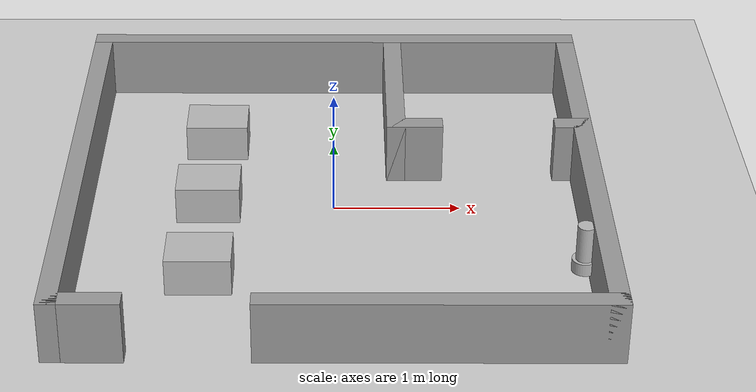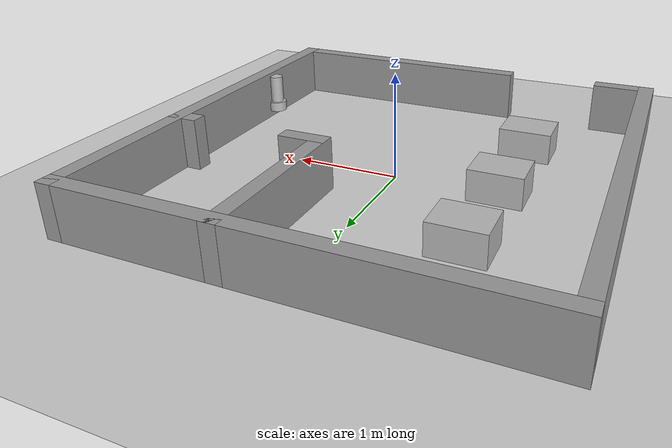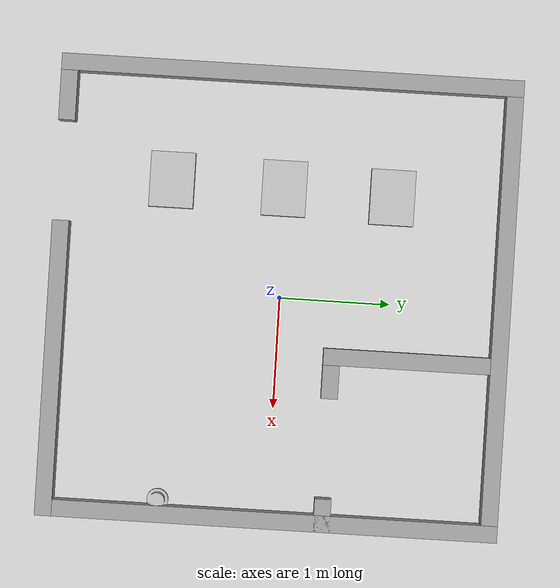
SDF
<sdf version="1.7">
 <world name="default">
  <light name="sun" type="directional">
   <pose>0 0 10 0 -0 0</pose>
   <diffuse>0.8 0.8 0.8 1</diffuse>
   <specular>0.2 0.2 0.2 1</specular>
   <attenuation>
    <range>1000</range>
    <constant>0.9</constant>
    <linear>0.01</linear>
    <quadratic>0.001</quadratic>
   </attenuation>
   <direction>-0.5 0.1 -0.9</direction>
   <spot><inner_angle>0</inner_angle><outer_angle>0</outer_angle><falloff>0</falloff></spot>
  </light>
  <model name="ground_plane">
   <static>1</static>
   <link name="link">
    <collision name="collision">
     <geometry><plane><normal>0 0 1</normal><size>100 100</size></plane></geometry>
     <surface><friction><ode><mu>100</mu><mu2>50</mu2></ode></friction></surface>
    </collision>
    <visual name="visual">
     <cast_shadows>0</cast_shadows>
     <geometry><plane><normal>0 0 1</normal><size>100 100</size></plane></geometry>
     <material>
      <script><uri>file://media/materials/scripts/gazebo.material</uri><name>Gazebo/Grey</name></script>
     </material>
    </visual>
   </link>
  </model>
  <gravity>0 0 -9.8</gravity>
  <magnetic_field>6e-06 2.3e-05 -4.2e-05</magnetic_field>
  <atmosphere type="adiabatic"/>
  <physics type="ode">
   <max_step_size>0.001</max_step_size>
   <real_time_factor>1</real_time_factor>
   <real_time_update_rate>1000</real_time_update_rate>
   <ode>
    <solver>
     <type>quick</type>
     <iters>150</iters>
     <precon_iters>0</precon_iters>
     <sor>1.400000</sor>
     <use_dynamic_moi_rescaling>1</use_dynamic_moi_rescaling>
    </solver>
    <constraints>
     <cfm>0.00001</cfm>
     <erp>0.2</erp>
     <contact_max_correcting_vel>2000.000000</contact_max_correcting_vel>
     <contact_surface_layer>0.01000</contact_surface_layer>
    </constraints>
   </ode>
  </physics>
  <scene><ambient>0.4 0.4 0.4 1</ambient><background>0.7 0.7 0.7 1</background><shadows>1</shadows></scene>
  <audio><device>default</device></audio>
  <spherical_coordinates>
   <surface_model>EARTH_WGS84</surface_model>
   <latitude_deg>0</latitude_deg>
   <longitude_deg>0</longitude_deg>
   <elevation>0</elevation>
   <heading_deg>0</heading_deg>
  </spherical_coordinates>
  <model name="cafe_layout">
   <link name="Wall_0">
    <collision name="Wall_0_Collision">
     <geometry><box><size>4.15 0.15 0.5</size></box></geometry>
     <pose>0 0 0.25 0 -0 0</pose>
    </collision>
    <visual name="Wall_0_Visual">
     <pose>0 0 0.25 0 -0 0</pose>
     <geometry><box><size>4.15 0.15 0.5</size></box></geometry>
     <material>
      <script><uri>file://media/materials/scripts/gazebo.material</uri><name>Gazebo/Grey</name></script>
      <ambient>1 1 1 1</ambient>
     </material>
     <meta><layer>0</layer></meta>
    </visual>
    <pose>-2 0 0 0 -0 -1.5708</pose>
   </link>
   <link name="Wall_1">
    <pose>0 -2 0 0 -0 0</pose>
    <visual name="Wall_1_Visual_0">
     <pose>-1.77623 0 0.25 0 -0 0</pose>
     <geometry><box><size>0.597546 0.15 0.5</size></box></geometry>
     <material>
      <script><uri>file://media/materials/scripts/gazebo.material</uri><name>Gazebo/Grey</name></script>
      <ambient>1 1 1 1</ambient>
     </material>
     <meta><layer>0</layer></meta>
    </visual>
    <collision name="Wall_1_Collision_0">
     <geometry><box><size>0.597546 0.15 0.5</size></box></geometry>
     <pose>-1.77623 0 0.25 0 -0 0</pose>
    </collision>
    <visual name="Wall_1_Visual_1">
     <pose>0.748773 0 0.25 0 -0 0</pose>
     <geometry><box><size>2.65245 0.15 0.5</size></box></geometry>
     <material>
      <script><uri>file://media/materials/scripts/gazebo.material</uri><name>Gazebo/Grey</name></script>
      <ambient>1 1 1 1</ambient>
     </material>
     <meta><layer>0</layer></meta>
    </visual>
    <collision name="Wall_1_Collision_1">
     <geometry><box><size>2.65245 0.15 0.5</size></box></geometry>
     <pose>0.748773 0 0.25 0 -0 0</pose>
    </collision>
   </link>
   <link name="Wall_2">
    <collision name="Wall_2_Collision">
     <geometry><box><size>4.15 0.15 0.5</size></box></geometry>
     <pose>0 0 0.25 0 -0 0</pose>
    </collision>
    <visual name="Wall_2_Visual">
     <pose>0 0 0.25 0 -0 0</pose>
     <geometry><box><size>4.15 0.15 0.5</size></box></geometry>
     <material>
      <script><uri>file://media/materials/scripts/gazebo.material</uri><name>Gazebo/Grey</name></script>
      <ambient>1 1 1 1</ambient>
     </material>
     <meta><layer>0</layer></meta>
    </visual>
    <pose>2 0 0 0 -0 1.5708</pose>
   </link>
   <link name="Wall_3">
    <collision name="Wall_3_Collision">
     <geometry><box><size>4.15 0.15 0.5</size></box></geometry>
     <pose>0 0 0.25 0 -0 0</pose>
    </collision>
    <visual name="Wall_3_Visual">
     <pose>0 0 0.25 0 -0 0</pose>
     <geometry><box><size>4.15 0.15 0.5</size></box></geometry>
     <material>
      <script><uri>file://media/materials/scripts/gazebo.material</uri><name>Gazebo/Grey</name></script>
      <ambient>1 1 1 1</ambient>
     </material>
     <meta><layer>0</layer></meta>
    </visual>
    <pose>0 2 0 0 -0 3.14159</pose>
   </link>
   <link name="Wall_5">
    <collision name="Wall_5_Collision">
     <geometry><box><size>1.65 0.15 0.5</size></box></geometry>
     <pose>0 0 0.25 0 -0 0</pose>
    </collision>
    <visual name="Wall_5_Visual">
     <pose>0 0 0.25 0 -0 0</pose>
     <geometry><box><size>1.65 0.15 0.5</size></box></geometry>
     <material>
      <script><uri>file://media/materials/scripts/gazebo.material</uri><name>Gazebo/Grey</name></script>
      <ambient>1 1 1 1</ambient>
     </material>
     <meta><layer>0</layer></meta>
    </visual>
    <pose>0.5 1.25 0 0 -0 -1.5708</pose>
   </link>
   <link name="Wall_6">
    <pose>1.25 0.5 0 0 -0 0</pose>
    <visual name="Wall_6_Visual_0">
     <pose>-0.599583 0 0.25 0 -0 0</pose>
     <geometry><box><size>0.450834 0.15 0.5</size></box></geometry>
     <material>
      <script><uri>file://media/materials/scripts/gazebo.material</uri><name>Gazebo/Grey</name></script>
      <ambient>1 1 1 1</ambient>
     </material>
     <meta><layer>0</layer></meta>
    </visual>
    <collision name="Wall_6_Collision_0">
     <geometry><box><size>0.450834 0.15 0.5</size></box></geometry>
     <pose>-0.599583 0 0.25 0 -0 0</pose>
    </collision>
    <visual name="Wall_6_Visual_1">
     <pose>0.675417 0 0.25 0 -0 0</pose>
     <geometry><box><size>0.299166 0.15 0.5</size></box></geometry>
     <material>
      <script><uri>file://media/materials/scripts/gazebo.material</uri><name>Gazebo/Grey</name></script>
      <ambient>1 1 1 1</ambient>
     </material>
     <meta><layer>0</layer></meta>
    </visual>
    <collision name="Wall_6_Collision_1">
     <geometry><box><size>0.299166 0.15 0.5</size></box></geometry>
     <pose>0.675417 0 0.25 0 -0 0</pose>
    </collision>
   </link>
   <static>1</static>
  </model>
  <model name="cardboard_box">
   <pose>-0.963242 0.96095 0.149 0 -0 0</pose>
   <link name="link">
    <inertial>
     <mass>2</mass>
     <inertia>
      <ixx>0.0416667</ixx>
      <ixy>0</ixy>
      <ixz>0</ixz>
      <iyy>0.0566667</iyy>
      <iyz>0</iyz>
      <izz>0.0683333</izz>
     </inertia>
    </inertial>
    <collision name="collision">
     <geometry><box><size>0.5 0.4 0.3</size></box></geometry>
     <surface>
      <friction><ode><mu>1</mu><mu2>1</mu2></ode></friction>
      <contact><ode><kp>1e+07</kp><kd>1</kd><min_depth>0.001</min_depth><max_vel>0.1</max_vel></ode></contact>
     </surface>
    </collision>
    <visual name="visual">
     <pose>0 0 -0.15 0 -0 0</pose>
     <geometry>
      <mesh><uri>model://cardboard_box/meshes/cardboard_box.dae</uri><scale>1.25932 1.00745 0.755591</scale></mesh>
     </geometry>
    </visual>
   </link>
  </model>
  <model name="cardboard_box_0">
   <pose>-0.987493 -0.016489 0.149 0 -0 0</pose>
   <link name="link">
    <inertial>
     <mass>2</mass>
     <inertia>
      <ixx>0.0416667</ixx>
      <ixy>0</ixy>
      <ixz>0</ixz>
      <iyy>0.0566667</iyy>
      <iyz>0</iyz>
      <izz>0.0683333</izz>
     </inertia>
    </inertial>
    <collision name="collision">
     <geometry><box><size>0.5 0.4 0.3</size></box></geometry>
     <surface>
      <friction><ode><mu>1</mu><mu2>1</mu2></ode></friction>
      <contact><ode><kp>1e+07</kp><kd>1</kd><min_depth>0.001</min_depth><max_vel>0.1</max_vel></ode></contact>
     </surface>
    </collision>
    <visual name="visual">
     <pose>0 0 -0.15 0 -0 0</pose>
     <geometry>
      <mesh><uri>model://cardboard_box/meshes/cardboard_box.dae</uri><scale>1.25932 1.00745 0.755591</scale></mesh>
     </geometry>
    </visual>
   </link>
  </model>
  <model name="cardboard_box_1">
   <pose>-1.00507 -1.02894 0.149 0 -0 0</pose>
   <link name="link">
    <inertial>
     <mass>2</mass>
     <inertia>
      <ixx>0.0416667</ixx>
      <ixy>0</ixy>
      <ixz>0</ixz>
      <iyy>0.0566667</iyy>
      <iyz>0</iyz>
      <izz>0.0683333</izz>
     </inertia>
    </inertial>
    <collision name="collision">
     <geometry><box><size>0.5 0.4 0.3</size></box></geometry>
     <surface>
      <friction><ode><mu>1</mu><mu2>1</mu2></ode></friction>
      <contact><ode><kp>1e+07</kp><kd>1</kd><min_depth>0.001</min_depth><max_vel>0.1</max_vel></ode></contact>
     </surface>
    </collision>
    <visual name="visual">
     <pose>0 0 -0.15 0 -0 0</pose>
     <geometry>
      <mesh><uri>model://cardboard_box/meshes/cardboard_box.dae</uri><scale>1.25932 1.00745 0.755591</scale></mesh>
     </geometry>
    </visual>
   </link>
  </model>
  <model name="standpipe">
   <static>1</static>
   <link name="standpipe">
    <pose>0 0 0.1 0 1.57078 0</pose>
    <collision name="collision_stopper">
     <pose>0 0 0.22 0 -0 0</pose>
     <geometry><cylinder><radius>0.069</radius><length>0.1</length></cylinder></geometry>
     <surface><friction><ode><mu>0.5</mu><mu2>0.5</mu2></ode></friction></surface>
    </collision>
    <collision name="collision">
     <pose>0 0 0.15 0 -0 0</pose>
     <geometry><mesh><uri>model://standpipe/meshes/standpipe.dae</uri></mesh></geometry>
     <surface><friction><ode><mu>0.5</mu><mu2>0.5</mu2></ode></friction></surface>
    </collision>
    <visual name="visual">
     <pose>0 0 0.15 0 -0 0</pose>
     <geometry><mesh><uri>model://standpipe/meshes/standpipe.dae</uri></mesh></geometry>
    </visual>
   </link>
   <pose>1.98022 -0.989246 -0.074831 3.14159 -1.56827 3.14159</pose>
  </model>
 </world>
</sdf>
